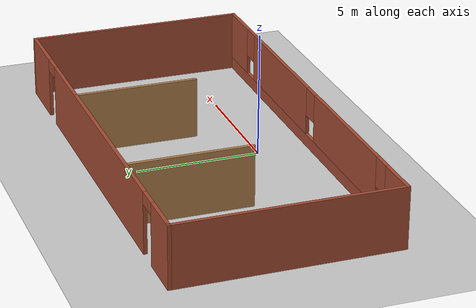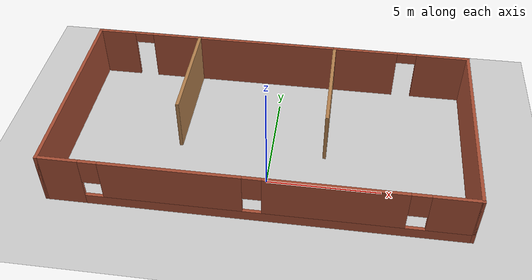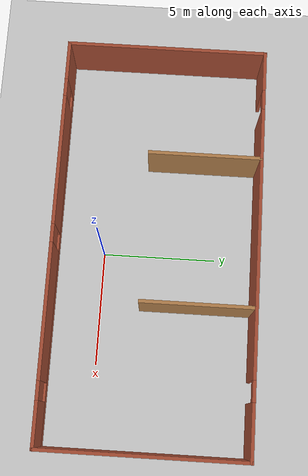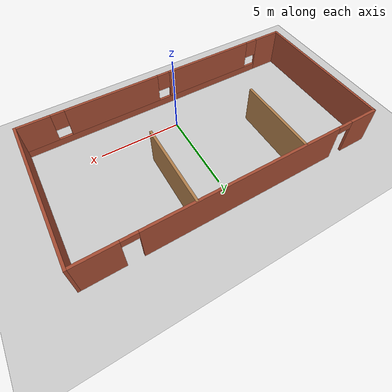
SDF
<sdf version="1.6">
 <world name="default">
  <plugin filename="libcollision_map_creator.so" name="collision_map_creator"/>
  <plugin name="hello" filename="libhello.so"/>
  <light name="sun" type="directional">
   <pose>0 0 10 0 -0 0</pose>
   <diffuse>0.8 0.8 0.8 1</diffuse>
   <specular>0.2 0.2 0.2 1</specular>
   <attenuation>
    <range>1000</range>
    <constant>0.9</constant>
    <linear>0.01</linear>
    <quadratic>0.001</quadratic>
   </attenuation>
   <direction>-0.5 0.1 -0.9</direction>
  </light>
  <model name="ground_plane">
   <static>1</static>
   <link name="link">
    <collision name="collision">
     <geometry><plane><normal>0 0 1</normal><size>100 100</size></plane></geometry>
     <surface>
      <contact><collide_bitmask>65535</collide_bitmask></contact>
      <friction><ode><mu>100</mu><mu2>50</mu2></ode></friction>
     </surface>
    </collision>
    <visual name="visual">
     <cast_shadows>0</cast_shadows>
     <geometry><plane><normal>0 0 1</normal><size>100 100</size></plane></geometry>
     <material>
      <script><uri>file://media/materials/scripts/gazebo.material</uri><name>Gazebo/Grey</name></script>
     </material>
    </visual>
   </link>
  </model>
  <gravity>0 0 -9.8</gravity>
  <magnetic_field>6e-06 2.3e-05 -4.2e-05</magnetic_field>
  <atmosphere type="adiabatic"/>
  <physics name="default_physics" default="0" type="ode">
   <max_step_size>0.001</max_step_size>
   <real_time_factor>1</real_time_factor>
   <real_time_update_rate>1000</real_time_update_rate>
  </physics>
  <scene><ambient>0.4 0.4 0.4 1</ambient><background>0.7 0.7 0.7 1</background><shadows>1</shadows></scene>
  <spherical_coordinates>
   <surface_model>EARTH_WGS84</surface_model>
   <latitude_deg>0</latitude_deg>
   <longitude_deg>0</longitude_deg>
   <elevation>0</elevation>
   <heading_deg>0</heading_deg>
  </spherical_coordinates>
  <model name="BuilidngModel">
   <pose>-0.234133 2.30355 0 0 -0 0</pose>
   <link name="Wall_1">
    <collision name="Wall_1_Collision">
     <geometry><box><size>9 0.15 2.5</size></box></geometry>
     <pose>0 0 1.25 0 -0 0</pose>
    </collision>
    <visual name="Wall_1_Visual">
     <pose>0 0 1.25 0 -0 0</pose>
     <geometry><box><size>9 0.15 2.5</size></box></geometry>
     <material>
      <script><uri>file://media/materials/scripts/gazebo.material</uri><name>Gazebo/Bricks</name></script>
      <ambient>1 1 1 1</ambient>
     </material>
     <meta><layer>0</layer></meta>
    </visual>
    <pose>-8.925 0 0 0 0 -1.5708</pose>
   </link>
   <link name="Wall_2">
    <pose>0 -4.425 0 0 -0 0</pose>
    <visual name="Wall_2_Visual_0">
     <pose>-8.08519 0 1.25 0 -0 0</pose>
     <geometry><box><size>1.82962 0.15 2.5</size></box></geometry>
     <material>
      <script><uri>file://media/materials/scripts/gazebo.material</uri><name>Gazebo/Bricks</name></script>
      <ambient>1 1 1 1</ambient>
     </material>
     <meta><layer>0</layer></meta>
    </visual>
    <collision name="Wall_2_Collision_0">
     <geometry><box><size>1.82962 0.15 2.5</size></box></geometry>
     <pose>-8.08519 0 1.25 0 -0 0</pose>
    </collision>
    <visual name="Wall_2_Visual_1">
     <pose>0.914808 0 0.25 0 -0 0</pose>
     <geometry><box><size>16.1704 0.15 0.5</size></box></geometry>
     <material>
      <script><uri>file://media/materials/scripts/gazebo.material</uri><name>Gazebo/Bricks</name></script>
      <ambient>1 1 1 1</ambient>
     </material>
     <meta><layer>0</layer></meta>
    </visual>
    <collision name="Wall_2_Collision_1">
     <geometry><box><size>16.1704 0.15 0.5</size></box></geometry>
     <pose>0.914808 0 0.25 0 -0 0</pose>
    </collision>
    <visual name="Wall_2_Visual_2">
     <pose>-3.41876 0 1.5 0 -0 0</pose>
     <geometry><box><size>5.90325 0.15 2</size></box></geometry>
     <material>
      <script><uri>file://media/materials/scripts/gazebo.material</uri><name>Gazebo/Bricks</name></script>
      <ambient>1 1 1 1</ambient>
     </material>
     <meta><layer>0</layer></meta>
    </visual>
    <collision name="Wall_2_Collision_2">
     <geometry><box><size>5.90325 0.15 2</size></box></geometry>
     <pose>-3.41876 0 1.5 0 -0 0</pose>
    </collision>
    <visual name="Wall_2_Visual_3">
     <pose>3.25789 0 1.5 0 -0 0</pose>
     <geometry><box><size>5.85005 0.15 2</size></box></geometry>
     <material>
      <script><uri>file://media/materials/scripts/gazebo.material</uri><name>Gazebo/Bricks</name></script>
      <ambient>1 1 1 1</ambient>
     </material>
     <meta><layer>0</layer></meta>
    </visual>
    <collision name="Wall_2_Collision_3">
     <geometry><box><size>5.85005 0.15 2</size></box></geometry>
     <pose>3.25789 0 1.5 0 -0 0</pose>
    </collision>
    <visual name="Wall_2_Visual_4">
     <pose>7.99146 0 1.5 0 -0 0</pose>
     <geometry><box><size>2.01708 0.15 2</size></box></geometry>
     <material>
      <script><uri>file://media/materials/scripts/gazebo.material</uri><name>Gazebo/Bricks</name></script>
      <ambient>1 1 1 1</ambient>
     </material>
     <meta><layer>0</layer></meta>
    </visual>
    <collision name="Wall_2_Collision_4">
     <geometry><box><size>2.01708 0.15 2</size></box></geometry>
     <pose>7.99146 0 1.5 0 -0 0</pose>
    </collision>
    <visual name="Wall_2_Visual_5">
     <pose>-6.77038 0 1.9 0 -0 0</pose>
     <geometry><box><size>0.8 0.15 1.2</size></box></geometry>
     <material>
      <script><uri>file://media/materials/scripts/gazebo.material</uri><name>Gazebo/Bricks</name></script>
      <ambient>1 1 1 1</ambient>
     </material>
     <meta><layer>0</layer></meta>
    </visual>
    <collision name="Wall_2_Collision_5">
     <geometry><box><size>0.8 0.15 1.2</size></box></geometry>
     <pose>-6.77038 0 1.9 0 -0 0</pose>
    </collision>
    <visual name="Wall_2_Visual_6">
     <pose>-0.067134 0 1.9 0 -0 0</pose>
     <geometry><box><size>0.8 0.15 1.2</size></box></geometry>
     <material>
      <script><uri>file://media/materials/scripts/gazebo.material</uri><name>Gazebo/Bricks</name></script>
      <ambient>1 1 1 1</ambient>
     </material>
     <meta><layer>0</layer></meta>
    </visual>
    <collision name="Wall_2_Collision_6">
     <geometry><box><size>0.8 0.15 1.2</size></box></geometry>
     <pose>-0.067134 0 1.9 0 -0 0</pose>
    </collision>
    <visual name="Wall_2_Visual_7">
     <pose>6.58292 0 1.9 0 -0 0</pose>
     <geometry><box><size>0.8 0.15 1.2</size></box></geometry>
     <material>
      <script><uri>file://media/materials/scripts/gazebo.material</uri><name>Gazebo/Bricks</name></script>
      <ambient>1 1 1 1</ambient>
     </material>
     <meta><layer>0</layer></meta>
    </visual>
    <collision name="Wall_2_Collision_7">
     <geometry><box><size>0.8 0.15 1.2</size></box></geometry>
     <pose>6.58292 0 1.9 0 -0 0</pose>
    </collision>
   </link>
   <link name="Wall_3">
    <collision name="Wall_3_Collision">
     <geometry><box><size>9 0.15 2.5</size></box></geometry>
     <pose>0 0 1.25 0 -0 0</pose>
    </collision>
    <visual name="Wall_3_Visual">
     <pose>0 0 1.25 0 -0 0</pose>
     <geometry><box><size>9 0.15 2.5</size></box></geometry>
     <material>
      <script><uri>file://media/materials/scripts/gazebo.material</uri><name>Gazebo/Bricks</name></script>
      <ambient>1 1 1 1</ambient>
     </material>
     <meta><layer>0</layer></meta>
    </visual>
    <pose>8.925 0 0 0 -0 1.5708</pose>
   </link>
   <link name="Wall_4">
    <pose>0 4.425 0 0 -0 3.14159</pose>
    <visual name="Wall_4_Visual_0">
     <pose>-7.76376 0 1.25 0 -0 0</pose>
     <geometry><box><size>2.47249 0.15 2.5</size></box></geometry>
     <material>
      <script><uri>file://media/materials/scripts/gazebo.material</uri><name>Gazebo/Bricks</name></script>
      <ambient>1 1 1 1</ambient>
     </material>
     <meta><layer>0</layer></meta>
    </visual>
    <collision name="Wall_4_Collision_0">
     <geometry><box><size>2.47249 0.15 2.5</size></box></geometry>
     <pose>-7.76376 0 1.25 0 -0 0</pose>
    </collision>
    <visual name="Wall_4_Visual_1">
     <pose>0.319836 0 1.25 0 -0 0</pose>
     <geometry><box><size>11.8947 0.15 2.5</size></box></geometry>
     <material>
      <script><uri>file://media/materials/scripts/gazebo.material</uri><name>Gazebo/Bricks</name></script>
      <ambient>1 1 1 1</ambient>
     </material>
     <meta><layer>0</layer></meta>
    </visual>
    <collision name="Wall_4_Collision_1">
     <geometry><box><size>11.8947 0.15 2.5</size></box></geometry>
     <pose>0.319836 0 1.25 0 -0 0</pose>
    </collision>
    <visual name="Wall_4_Visual_2">
     <pose>8.08359 0 1.25 0 -0 0</pose>
     <geometry><box><size>1.83282 0.15 2.5</size></box></geometry>
     <material>
      <script><uri>file://media/materials/scripts/gazebo.material</uri><name>Gazebo/Bricks</name></script>
      <ambient>1 1 1 1</ambient>
     </material>
     <meta><layer>0</layer></meta>
    </visual>
    <collision name="Wall_4_Collision_2">
     <geometry><box><size>1.83282 0.15 2.5</size></box></geometry>
     <pose>8.08359 0 1.25 0 -0 0</pose>
    </collision>
    <visual name="Wall_4_Visual_3">
     <pose>-6.07751 0 2.25 0 -0 0</pose>
     <geometry><box><size>0.9 0.15 0.5</size></box></geometry>
     <material>
      <script><uri>file://media/materials/scripts/gazebo.material</uri><name>Gazebo/Bricks</name></script>
      <ambient>1 1 1 1</ambient>
     </material>
     <meta><layer>0</layer></meta>
    </visual>
    <collision name="Wall_4_Collision_3">
     <geometry><box><size>0.9 0.15 0.5</size></box></geometry>
     <pose>-6.07751 0 2.25 0 -0 0</pose>
    </collision>
    <visual name="Wall_4_Visual_4">
     <pose>6.71718 0 2.25 0 -0 0</pose>
     <geometry><box><size>0.9 0.15 0.5</size></box></geometry>
     <material>
      <script><uri>file://media/materials/scripts/gazebo.material</uri><name>Gazebo/Bricks</name></script>
      <ambient>1 1 1 1</ambient>
     </material>
     <meta><layer>0</layer></meta>
    </visual>
    <collision name="Wall_4_Collision_4">
     <geometry><box><size>0.9 0.15 0.5</size></box></geometry>
     <pose>6.71718 0 2.25 0 -0 0</pose>
    </collision>
   </link>
   <link name="Wall_6">
    <collision name="Wall_6_Collision">
     <geometry><box><size>5 0.15 2.5</size></box></geometry>
     <pose>0 0 1.25 0 -0 0</pose>
    </collision>
    <visual name="Wall_6_Visual">
     <pose>0 0 1.25 0 -0 0</pose>
     <geometry><box><size>5 0.15 2.5</size></box></geometry>
     <material>
      <script><uri>file://media/materials/scripts/gazebo.material</uri><name>Gazebo/Wood</name></script>
      <ambient>1 1 1 1</ambient>
     </material>
     <meta><layer>0</layer></meta>
    </visual>
    <pose>-3.95076 1.9468 0 0 0 -1.5708</pose>
   </link>
   <link name="Wall_8">
    <collision name="Wall_8_Collision">
     <geometry><box><size>5 0.15 2.5</size></box></geometry>
     <pose>0 0 1.25 0 -0 0</pose>
    </collision>
    <visual name="Wall_8_Visual">
     <pose>0 0 1.25 0 -0 0</pose>
     <geometry><box><size>5 0.15 2.5</size></box></geometry>
     <material>
      <script><uri>file://media/materials/scripts/gazebo.material</uri><name>Gazebo/Wood</name></script>
      <ambient>1 1 1 1</ambient>
     </material>
     <meta><layer>0</layer></meta>
    </visual>
    <pose>2.64609 1.9468 0 0 0 -1.5708</pose>
   </link>
   <static>1</static>
  </model>
 </world>
</sdf>
